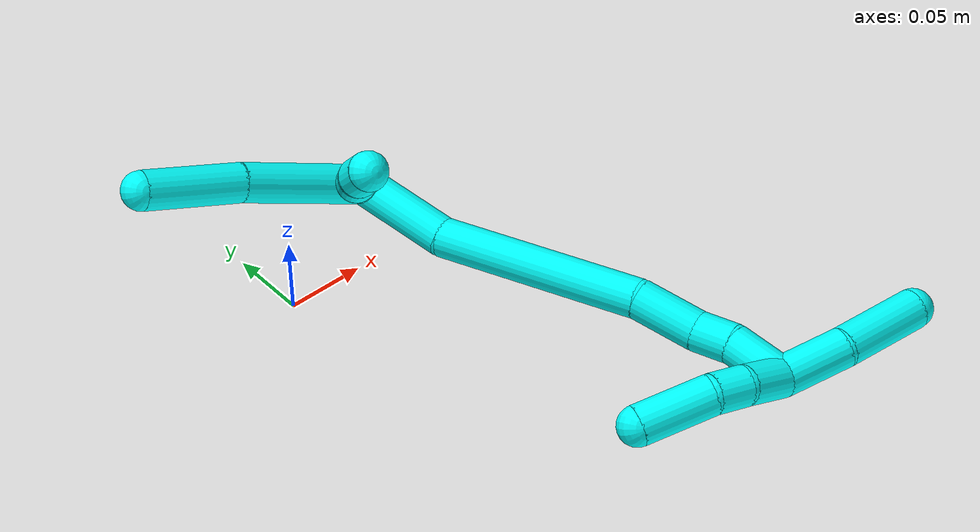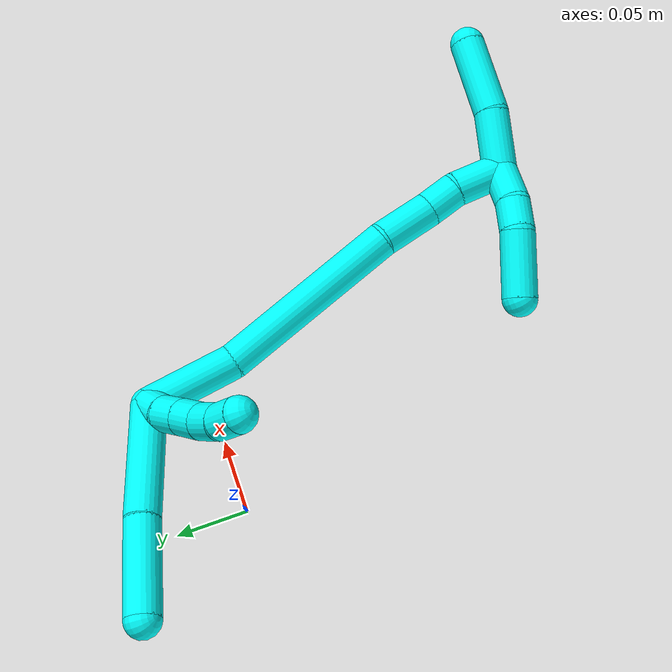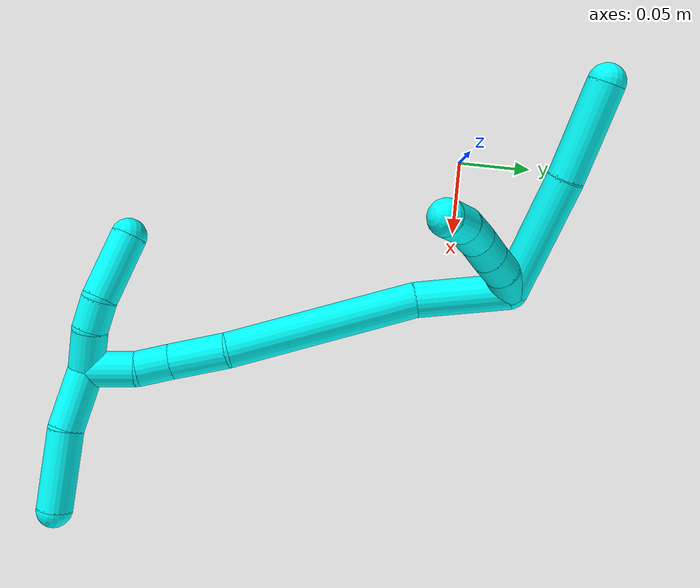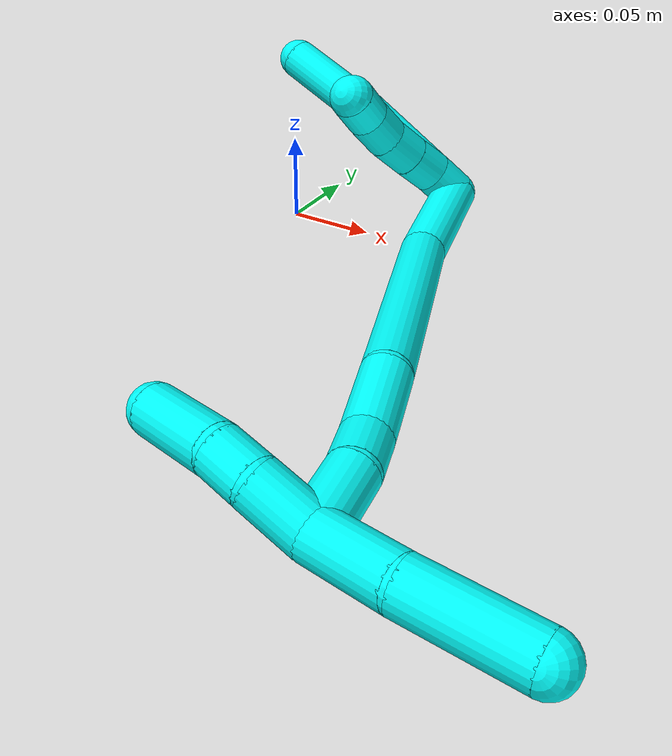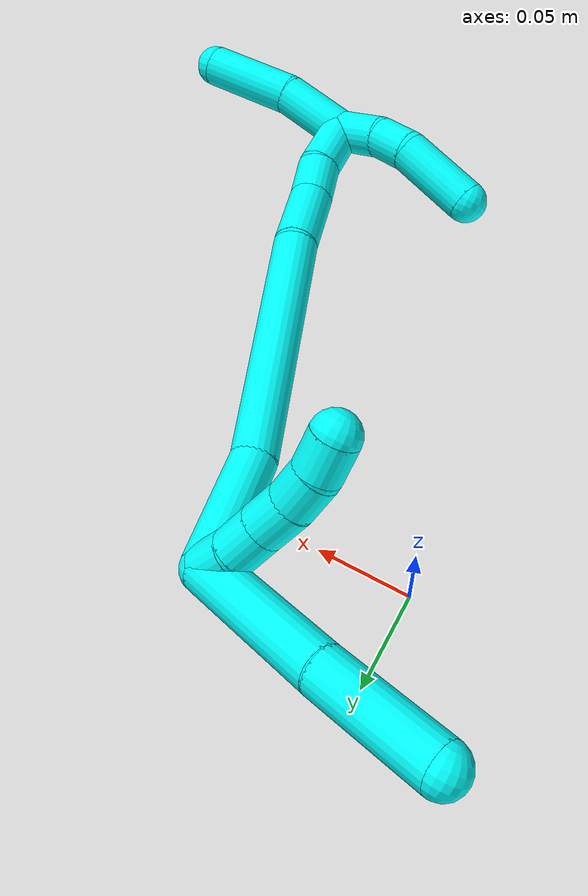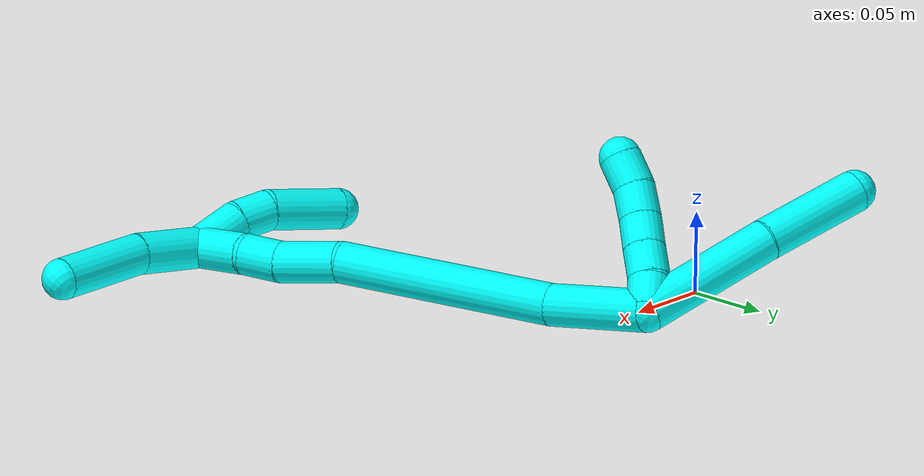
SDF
<sdf version="1.7">
 <world name="default">
  <model name="3">
   <static>0</static>
   <link name="3">
    <collision name="collision-cylinder-e_1_2_8">
     <pose>-0.030871 0.028783 0.000949 -1.53784 -0.820105 0.796277</pose>
     <geometry><cylinder><radius>0.0125</radius><length>0.084436</length></cylinder></geometry>
     <surface>
      <friction><ode><mu>1.16</mu><mu2>1.16</mu2><slip1>0</slip1><slip2>0</slip2></ode></friction>
      <contact><ode><kp>1e+06</kp><kd>1</kd><max_vel>0</max_vel><min_depth>0.001</min_depth></ode></contact>
     </surface>
    </collision>
    <visual name="visual-cylinder-e_1_2_8">
     <pose>-0.030871 0.028783 0.000949 -1.53784 -0.820105 0.796277</pose>
     <geometry><cylinder><radius>0.0125</radius><length>0.084436</length></cylinder></geometry>
     <material><ambient>0.003922 1 0.996078 1</ambient></material>
    </visual>
    <collision name="collision-cylinder-e_2_8_6">
     <pose>-0.087527 0.077795 0.002652 -1.5335 -0.905247 0.876239</pose>
     <geometry><cylinder><radius>0.0125</radius><length>0.065564</length></cylinder></geometry>
     <surface>
      <friction><ode><mu>1.16</mu><mu2>1.16</mu2><slip1>0</slip1><slip2>0</slip2></ode></friction>
      <contact><ode><kp>1e+06</kp><kd>1</kd><max_vel>0</max_vel><min_depth>0.001</min_depth></ode></contact>
     </surface>
    </collision>
    <visual name="visual-cylinder-e_2_8_6">
     <pose>-0.087527 0.077795 0.002652 -1.5335 -0.905247 0.876239</pose>
     <geometry><cylinder><radius>0.0125</radius><length>0.065564</length></cylinder></geometry>
     <material><ambient>0.003922 1 0.996078 1</ambient></material>
    </visual>
    <collision name="collision-cylinder-e_1_2_9">
     <pose>-0.003939 0.004846 0.007811 -0.555281 -0.404821 0.116843</pose>
     <geometry><cylinder><radius>0.0125</radius><length>0.02</length></cylinder></geometry>
     <surface>
      <friction><ode><mu>1.16</mu><mu2>1.16</mu2><slip1>0</slip1><slip2>0</slip2></ode></friction>
      <contact><ode><kp>1e+06</kp><kd>1</kd><max_vel>0</max_vel><min_depth>0.001</min_depth></ode></contact>
     </surface>
    </collision>
    <visual name="visual-cylinder-e_1_2_9">
     <pose>-0.003939 0.004846 0.007811 -0.555281 -0.404821 0.116843</pose>
     <geometry><cylinder><radius>0.0125</radius><length>0.02</length></cylinder></geometry>
     <material><ambient>0.003922 1 0.996078 1</ambient></material>
    </visual>
    <collision name="collision-cylinder-e_2_9_10">
     <pose>-0.011026 0.012903 0.024553 -0.345195 -0.320346 0.056314</pose>
     <geometry><cylinder><radius>0.0125</radius><length>0.02</length></cylinder></geometry>
     <surface>
      <friction><ode><mu>1.16</mu><mu2>1.16</mu2><slip1>0</slip1><slip2>0</slip2></ode></friction>
      <contact><ode><kp>1e+06</kp><kd>1</kd><max_vel>0</max_vel><min_depth>0.001</min_depth></ode></contact>
     </surface>
    </collision>
    <visual name="visual-cylinder-e_2_9_10">
     <pose>-0.011026 0.012903 0.024553 -0.345195 -0.320346 0.056314</pose>
     <geometry><cylinder><radius>0.0125</radius><length>0.02</length></cylinder></geometry>
     <material><ambient>0.003922 1 0.996078 1</ambient></material>
    </visual>
    <collision name="collision-cylinder-e_3_10_11">
     <pose>-0.017323 0.019639 0.042297 -0.380428 -0.320264 0.062177</pose>
     <geometry><cylinder><radius>0.0125</radius><length>0.02</length></cylinder></geometry>
     <surface>
      <friction><ode><mu>1.16</mu><mu2>1.16</mu2><slip1>0</slip1><slip2>0</slip2></ode></friction>
      <contact><ode><kp>1e+06</kp><kd>1</kd><max_vel>0</max_vel><min_depth>0.001</min_depth></ode></contact>
     </surface>
    </collision>
    <visual name="visual-cylinder-e_3_10_11">
     <pose>-0.017323 0.019639 0.042297 -0.380428 -0.320264 0.062177</pose>
     <geometry><cylinder><radius>0.0125</radius><length>0.02</length></cylinder></geometry>
     <material><ambient>0.003922 1 0.996078 1</ambient></material>
    </visual>
    <collision name="collision-cylinder-e_4_11_12">
     <pose>-0.022132 0.027125 0.06014 -0.413411 -0.16687 0.035071</pose>
     <geometry><cylinder><radius>0.0125</radius><length>0.02</length></cylinder></geometry>
     <surface>
      <friction><ode><mu>1.16</mu><mu2>1.16</mu2><slip1>0</slip1><slip2>0</slip2></ode></friction>
      <contact><ode><kp>1e+06</kp><kd>1</kd><max_vel>0</max_vel><min_depth>0.001</min_depth></ode></contact>
     </surface>
    </collision>
    <visual name="visual-cylinder-e_4_11_12">
     <pose>-0.022132 0.027125 0.06014 -0.413411 -0.16687 0.035071</pose>
     <geometry><cylinder><radius>0.0125</radius><length>0.02</length></cylinder></geometry>
     <material><ambient>0.003922 1 0.996078 1</ambient></material>
    </visual>
    <collision name="collision-cylinder-e_5_12_5">
     <pose>-0.023488 0.03387 0.078771 -0.282159 0.030495 -0.004331</pose>
     <geometry><cylinder><radius>0.0125</radius><length>0.02</length></cylinder></geometry>
     <surface>
      <friction><ode><mu>1.16</mu><mu2>1.16</mu2><slip1>0</slip1><slip2>0</slip2></ode></friction>
      <contact><ode><kp>1e+06</kp><kd>1</kd><max_vel>0</max_vel><min_depth>0.001</min_depth></ode></contact>
     </surface>
    </collision>
    <visual name="visual-cylinder-e_5_12_5">
     <pose>-0.023488 0.03387 0.078771 -0.282159 0.030495 -0.004331</pose>
     <geometry><cylinder><radius>0.0125</radius><length>0.02</length></cylinder></geometry>
     <material><ambient>0.003922 1 0.996078 1</ambient></material>
    </visual>
    <collision name="collision-cylinder-e_1_2_13">
     <pose>0.001515 -0.021921 0.023741 0.745558 0.046851 0.018325</pose>
     <geometry><cylinder><radius>0.0125</radius><length>0.064699</length></cylinder></geometry>
     <surface>
      <friction><ode><mu>1.16</mu><mu2>1.16</mu2><slip1>0</slip1><slip2>0</slip2></ode></friction>
      <contact><ode><kp>1e+06</kp><kd>1</kd><max_vel>0</max_vel><min_depth>0.001</min_depth></ode></contact>
     </surface>
    </collision>
    <visual name="visual-cylinder-e_1_2_13">
     <pose>0.001515 -0.021921 0.023741 0.745558 0.046851 0.018325</pose>
     <geometry><cylinder><radius>0.0125</radius><length>0.064699</length></cylinder></geometry>
     <material><ambient>0.003922 1 0.996078 1</ambient></material>
    </visual>
    <collision name="collision-cylinder-e_2_13_14">
     <pose>0.02054 -0.080842 0.100724 0.607324 0.263767 0.083087</pose>
     <geometry><cylinder><radius>0.0125</radius><length>0.134317</length></cylinder></geometry>
     <surface>
      <friction><ode><mu>1.16</mu><mu2>1.16</mu2><slip1>0</slip1><slip2>0</slip2></ode></friction>
      <contact><ode><kp>1e+06</kp><kd>1</kd><max_vel>0</max_vel><min_depth>0.001</min_depth></ode></contact>
     </surface>
    </collision>
    <visual name="visual-cylinder-e_2_13_14">
     <pose>0.02054 -0.080842 0.100724 0.607324 0.263767 0.083087</pose>
     <geometry><cylinder><radius>0.0125</radius><length>0.134317</length></cylinder></geometry>
     <material><ambient>0.003922 1 0.996078 1</ambient></material>
    </visual>
    <collision name="collision-cylinder-e_3_14_15">
     <pose>0.041009 -0.13222 0.168046 0.795854 0.146033 0.061475</pose>
     <geometry><cylinder><radius>0.0125</radius><length>0.04068</length></cylinder></geometry>
     <surface>
      <friction><ode><mu>1.16</mu><mu2>1.16</mu2><slip1>0</slip1><slip2>0</slip2></ode></friction>
      <contact><ode><kp>1e+06</kp><kd>1</kd><max_vel>0</max_vel><min_depth>0.001</min_depth></ode></contact>
     </surface>
    </collision>
    <visual name="visual-cylinder-e_3_14_15">
     <pose>0.041009 -0.13222 0.168046 0.795854 0.146033 0.061475</pose>
     <geometry><cylinder><radius>0.0125</radius><length>0.04068</length></cylinder></geometry>
     <material><ambient>0.003922 1 0.996078 1</ambient></material>
    </visual>
    <collision name="collision-cylinder-e_4_15_16">
     <pose>0.046573 -0.153251 0.191938 0.595881 0.216251 0.066642</pose>
     <geometry><cylinder><radius>0.0125</radius><length>0.024277</length></cylinder></geometry>
     <surface>
      <friction><ode><mu>1.16</mu><mu2>1.16</mu2><slip1>0</slip1><slip2>0</slip2></ode></friction>
      <contact><ode><kp>1e+06</kp><kd>1</kd><max_vel>0</max_vel><min_depth>0.001</min_depth></ode></contact>
     </surface>
    </collision>
    <visual name="visual-cylinder-e_4_15_16">
     <pose>0.046573 -0.153251 0.191938 0.595881 0.216251 0.066642</pose>
     <geometry><cylinder><radius>0.0125</radius><length>0.024277</length></cylinder></geometry>
     <material><ambient>0.003922 1 0.996078 1</ambient></material>
    </visual>
    <collision name="collision-cylinder-e_5_16_1">
     <pose>0.048865 -0.1712 0.215779 0.677889 -0.017341 -0.006114</pose>
     <geometry><cylinder><radius>0.0125</radius><length>0.036028</length></cylinder></geometry>
     <surface>
      <friction><ode><mu>1.16</mu><mu2>1.16</mu2><slip1>0</slip1><slip2>0</slip2></ode></friction>
      <contact><ode><kp>1e+06</kp><kd>1</kd><max_vel>0</max_vel><min_depth>0.001</min_depth></ode></contact>
     </surface>
    </collision>
    <visual name="visual-cylinder-e_5_16_1">
     <pose>0.048865 -0.1712 0.215779 0.677889 -0.017341 -0.006114</pose>
     <geometry><cylinder><radius>0.0125</radius><length>0.036028</length></cylinder></geometry>
     <material><ambient>0.003922 1 0.996078 1</ambient></material>
    </visual>
    <collision name="collision-cylinder-e_1_1_17">
     <pose>0.068762 -0.189341 0.23318 1.11312 1.20979 0.812422</pose>
     <geometry><cylinder><radius>0.0125</radius><length>0.043202</length></cylinder></geometry>
     <surface>
      <friction><ode><mu>1.16</mu><mu2>1.16</mu2><slip1>0</slip1><slip2>0</slip2></ode></friction>
      <contact><ode><kp>1e+06</kp><kd>1</kd><max_vel>0</max_vel><min_depth>0.001</min_depth></ode></contact>
     </surface>
    </collision>
    <visual name="visual-cylinder-e_1_1_17">
     <pose>0.068762 -0.189341 0.23318 1.11312 1.20979 0.812422</pose>
     <geometry><cylinder><radius>0.0125</radius><length>0.043202</length></cylinder></geometry>
     <material><ambient>0.003922 1 0.996078 1</ambient></material>
    </visual>
    <collision name="collision-cylinder-e_2_17_4">
     <pose>0.115608 -0.205942 0.235225 1.7059 1.21672 1.3465</pose>
     <geometry><cylinder><radius>0.0125</radius><length>0.056798</length></cylinder></geometry>
     <surface>
      <friction><ode><mu>1.16</mu><mu2>1.16</mu2><slip1>0</slip1><slip2>0</slip2></ode></friction>
      <contact><ode><kp>1e+06</kp><kd>1</kd><max_vel>0</max_vel><min_depth>0.001</min_depth></ode></contact>
     </surface>
    </collision>
    <visual name="visual-cylinder-e_2_17_4">
     <pose>0.115608 -0.205942 0.235225 1.7059 1.21672 1.3465</pose>
     <geometry><cylinder><radius>0.0125</radius><length>0.056798</length></cylinder></geometry>
     <material><ambient>0.003922 1 0.996078 1</ambient></material>
    </visual>
    <collision name="collision-cylinder-e_1_1_18">
     <pose>0.036482 -0.173724 0.232587 -1.264 -0.919447 0.695544</pose>
     <geometry><cylinder><radius>0.0125</radius><length>0.030356</length></cylinder></geometry>
     <surface>
      <friction><ode><mu>1.16</mu><mu2>1.16</mu2><slip1>0</slip1><slip2>0</slip2></ode></friction>
      <contact><ode><kp>1e+06</kp><kd>1</kd><max_vel>0</max_vel><min_depth>0.001</min_depth></ode></contact>
     </surface>
    </collision>
    <visual name="visual-cylinder-e_1_1_18">
     <pose>0.036482 -0.173724 0.232587 -1.264 -0.919447 0.695544</pose>
     <geometry><cylinder><radius>0.0125</radius><length>0.030356</length></cylinder></geometry>
     <material><ambient>0.003922 1 0.996078 1</ambient></material>
    </visual>
    <collision name="collision-cylinder-e_2_18_19">
     <pose>0.014878 -0.159298 0.234826 -1.66613 -1.03354 1.1175</pose>
     <geometry><cylinder><radius>0.0125</radius><length>0.022194</length></cylinder></geometry>
     <surface>
      <friction><ode><mu>1.16</mu><mu2>1.16</mu2><slip1>0</slip1><slip2>0</slip2></ode></friction>
      <contact><ode><kp>1e+06</kp><kd>1</kd><max_vel>0</max_vel><min_depth>0.001</min_depth></ode></contact>
     </surface>
    </collision>
    <visual name="visual-cylinder-e_2_18_19">
     <pose>0.014878 -0.159298 0.234826 -1.66613 -1.03354 1.1175</pose>
     <geometry><cylinder><radius>0.0125</radius><length>0.022194</length></cylinder></geometry>
     <material><ambient>0.003922 1 0.996078 1</ambient></material>
    </visual>
    <collision name="collision-cylinder-e_3_19_3">
     <pose>-0.016245 -0.146072 0.228009 -2.26278 -1.14332 1.87955</pose>
     <geometry><cylinder><radius>0.0125</radius><length>0.04745</length></cylinder></geometry>
     <surface>
      <friction><ode><mu>1.16</mu><mu2>1.16</mu2><slip1>0</slip1><slip2>0</slip2></ode></friction>
      <contact><ode><kp>1e+06</kp><kd>1</kd><max_vel>0</max_vel><min_depth>0.001</min_depth></ode></contact>
     </surface>
    </collision>
    <visual name="visual-cylinder-e_3_19_3">
     <pose>-0.016245 -0.146072 0.228009 -2.26278 -1.14332 1.87955</pose>
     <geometry><cylinder><radius>0.0125</radius><length>0.04745</length></cylinder></geometry>
     <material><ambient>0.003922 1 0.996078 1</ambient></material>
    </visual>
    <collision name="collision-sphere-3">
     <pose>-0.037836 -0.138498 0.221733 0 -0 0</pose>
     <geometry><sphere><radius>0.0125</radius></sphere></geometry>
     <surface>
      <friction><ode><mu>1.16</mu><mu2>1.16</mu2><slip1>0</slip1><slip2>0</slip2></ode></friction>
      <contact><ode><kp>1e+06</kp><kd>1</kd><max_vel>0</max_vel><min_depth>0.001</min_depth></ode></contact>
     </surface>
    </collision>
    <visual name="visual-sphere-3">
     <pose>-0.037836 -0.138498 0.221733 0 -0 0</pose>
     <geometry><sphere><radius>0.0125</radius></sphere></geometry>
     <material><ambient>0.003922 1 0.996078 1</ambient></material>
    </visual>
    <collision name="collision-sphere-19">
     <pose>0.005345 -0.153645 0.234285 0 -0 0</pose>
     <geometry><sphere><radius>0.0125</radius></sphere></geometry>
     <surface>
      <friction><ode><mu>1.16</mu><mu2>1.16</mu2><slip1>0</slip1><slip2>0</slip2></ode></friction>
      <contact><ode><kp>1e+06</kp><kd>1</kd><max_vel>0</max_vel><min_depth>0.001</min_depth></ode></contact>
     </surface>
    </collision>
    <visual name="visual-sphere-19">
     <pose>0.005345 -0.153645 0.234285 0 -0 0</pose>
     <geometry><sphere><radius>0.0125</radius></sphere></geometry>
     <material><ambient>0.003922 1 0.996078 1</ambient></material>
    </visual>
    <collision name="collision-sphere-11">
     <pose>-0.020471 0.023163 0.05111 0 -0 0</pose>
     <geometry><sphere><radius>0.0125</radius></sphere></geometry>
     <surface>
      <friction><ode><mu>1.16</mu><mu2>1.16</mu2><slip1>0</slip1><slip2>0</slip2></ode></friction>
      <contact><ode><kp>1e+06</kp><kd>1</kd><max_vel>0</max_vel><min_depth>0.001</min_depth></ode></contact>
     </surface>
    </collision>
    <visual name="visual-sphere-11">
     <pose>-0.020471 0.023163 0.05111 0 -0 0</pose>
     <geometry><sphere><radius>0.0125</radius></sphere></geometry>
     <material><ambient>0.003922 1 0.996078 1</ambient></material>
    </visual>
    <collision name="collision-sphere-10">
     <pose>-0.014175 0.016115 0.033484 0 -0 0</pose>
     <geometry><sphere><radius>0.0125</radius></sphere></geometry>
     <surface>
      <friction><ode><mu>1.16</mu><mu2>1.16</mu2><slip1>0</slip1><slip2>0</slip2></ode></friction>
      <contact><ode><kp>1e+06</kp><kd>1</kd><max_vel>0</max_vel><min_depth>0.001</min_depth></ode></contact>
     </surface>
    </collision>
    <visual name="visual-sphere-10">
     <pose>-0.014175 0.016115 0.033484 0 -0 0</pose>
     <geometry><sphere><radius>0.0125</radius></sphere></geometry>
     <material><ambient>0.003922 1 0.996078 1</ambient></material>
    </visual>
    <collision name="collision-sphere-6">
     <pose>-0.113312 0.098023 0.003407 0 -0 0</pose>
     <geometry><sphere><radius>0.0125</radius></sphere></geometry>
     <surface>
      <friction><ode><mu>1.16</mu><mu2>1.16</mu2><slip1>0</slip1><slip2>0</slip2></ode></friction>
      <contact><ode><kp>1e+06</kp><kd>1</kd><max_vel>0</max_vel><min_depth>0.001</min_depth></ode></contact>
     </surface>
    </collision>
    <visual name="visual-sphere-6">
     <pose>-0.113312 0.098023 0.003407 0 -0 0</pose>
     <geometry><sphere><radius>0.0125</radius></sphere></geometry>
     <material><ambient>0.003922 1 0.996078 1</ambient></material>
    </visual>
    <collision name="collision-sphere-9">
     <pose>-0.007877 0.009691 0.015621 0 -0 0</pose>
     <geometry><sphere><radius>0.0125</radius></sphere></geometry>
     <surface>
      <friction><ode><mu>1.16</mu><mu2>1.16</mu2><slip1>0</slip1><slip2>0</slip2></ode></friction>
      <contact><ode><kp>1e+06</kp><kd>1</kd><max_vel>0</max_vel><min_depth>0.001</min_depth></ode></contact>
     </surface>
    </collision>
    <visual name="visual-sphere-9">
     <pose>-0.007877 0.009691 0.015621 0 -0 0</pose>
     <geometry><sphere><radius>0.0125</radius></sphere></geometry>
     <material><ambient>0.003922 1 0.996078 1</ambient></material>
    </visual>
    <collision name="collision-sphere-2">
     <geometry><sphere><radius>0.0125</radius></sphere></geometry>
     <surface>
      <friction><ode><mu>1.16</mu><mu2>1.16</mu2><slip1>0</slip1><slip2>0</slip2></ode></friction>
      <contact><ode><kp>1e+06</kp><kd>1</kd><max_vel>0</max_vel><min_depth>0.001</min_depth></ode></contact>
     </surface>
    </collision>
    <visual name="visual-sphere-2">
     <geometry><sphere><radius>0.0125</radius></sphere></geometry>
     <material><ambient>0.003922 1 0.996078 1</ambient></material>
    </visual>
    <collision name="collision-sphere-8">
     <pose>-0.061741 0.057566 0.001898 0 -0 0</pose>
     <geometry><sphere><radius>0.0125</radius></sphere></geometry>
     <surface>
      <friction><ode><mu>1.16</mu><mu2>1.16</mu2><slip1>0</slip1><slip2>0</slip2></ode></friction>
      <contact><ode><kp>1e+06</kp><kd>1</kd><max_vel>0</max_vel><min_depth>0.001</min_depth></ode></contact>
     </surface>
    </collision>
    <visual name="visual-sphere-8">
     <pose>-0.061741 0.057566 0.001898 0 -0 0</pose>
     <geometry><sphere><radius>0.0125</radius></sphere></geometry>
     <material><ambient>0.003922 1 0.996078 1</ambient></material>
    </visual>
    <collision name="collision-sphere-12">
     <pose>-0.023793 0.031087 0.069171 0 -0 0</pose>
     <geometry><sphere><radius>0.0125</radius></sphere></geometry>
     <surface>
      <friction><ode><mu>1.16</mu><mu2>1.16</mu2><slip1>0</slip1><slip2>0</slip2></ode></friction>
      <contact><ode><kp>1e+06</kp><kd>1</kd><max_vel>0</max_vel><min_depth>0.001</min_depth></ode></contact>
     </surface>
    </collision>
    <visual name="visual-sphere-12">
     <pose>-0.023793 0.031087 0.069171 0 -0 0</pose>
     <geometry><sphere><radius>0.0125</radius></sphere></geometry>
     <material><ambient>0.003922 1 0.996078 1</ambient></material>
    </visual>
    <collision name="collision-sphere-5">
     <pose>-0.023183 0.036653 0.088371 0 -0 0</pose>
     <geometry><sphere><radius>0.0125</radius></sphere></geometry>
     <surface>
      <friction><ode><mu>1.16</mu><mu2>1.16</mu2><slip1>0</slip1><slip2>0</slip2></ode></friction>
      <contact><ode><kp>1e+06</kp><kd>1</kd><max_vel>0</max_vel><min_depth>0.001</min_depth></ode></contact>
     </surface>
    </collision>
    <visual name="visual-sphere-5">
     <pose>-0.023183 0.036653 0.088371 0 -0 0</pose>
     <geometry><sphere><radius>0.0125</radius></sphere></geometry>
     <material><ambient>0.003922 1 0.996078 1</ambient></material>
    </visual>
    <collision name="collision-sphere-13">
     <pose>0.00303 -0.043842 0.047482 0 -0 0</pose>
     <geometry><sphere><radius>0.0125</radius></sphere></geometry>
     <surface>
      <friction><ode><mu>1.16</mu><mu2>1.16</mu2><slip1>0</slip1><slip2>0</slip2></ode></friction>
      <contact><ode><kp>1e+06</kp><kd>1</kd><max_vel>0</max_vel><min_depth>0.001</min_depth></ode></contact>
     </surface>
    </collision>
    <visual name="visual-sphere-13">
     <pose>0.00303 -0.043842 0.047482 0 -0 0</pose>
     <geometry><sphere><radius>0.0125</radius></sphere></geometry>
     <material><ambient>0.003922 1 0.996078 1</ambient></material>
    </visual>
    <collision name="collision-sphere-14">
     <pose>0.038049 -0.117842 0.153966 0 -0 0</pose>
     <geometry><sphere><radius>0.0125</radius></sphere></geometry>
     <surface>
      <friction><ode><mu>1.16</mu><mu2>1.16</mu2><slip1>0</slip1><slip2>0</slip2></ode></friction>
      <contact><ode><kp>1e+06</kp><kd>1</kd><max_vel>0</max_vel><min_depth>0.001</min_depth></ode></contact>
     </surface>
    </collision>
    <visual name="visual-sphere-14">
     <pose>0.038049 -0.117842 0.153966 0 -0 0</pose>
     <geometry><sphere><radius>0.0125</radius></sphere></geometry>
     <material><ambient>0.003922 1 0.996078 1</ambient></material>
    </visual>
    <collision name="collision-sphere-15">
     <pose>0.043969 -0.146597 0.182126 0 -0 0</pose>
     <geometry><sphere><radius>0.0125</radius></sphere></geometry>
     <surface>
      <friction><ode><mu>1.16</mu><mu2>1.16</mu2><slip1>0</slip1><slip2>0</slip2></ode></friction>
      <contact><ode><kp>1e+06</kp><kd>1</kd><max_vel>0</max_vel><min_depth>0.001</min_depth></ode></contact>
     </surface>
    </collision>
    <visual name="visual-sphere-15">
     <pose>0.043969 -0.146597 0.182126 0 -0 0</pose>
     <geometry><sphere><radius>0.0125</radius></sphere></geometry>
     <material><ambient>0.003922 1 0.996078 1</ambient></material>
    </visual>
    <collision name="collision-sphere-16">
     <pose>0.049178 -0.159905 0.201751 0 -0 0</pose>
     <geometry><sphere><radius>0.0125</radius></sphere></geometry>
     <surface>
      <friction><ode><mu>1.16</mu><mu2>1.16</mu2><slip1>0</slip1><slip2>0</slip2></ode></friction>
      <contact><ode><kp>1e+06</kp><kd>1</kd><max_vel>0</max_vel><min_depth>0.001</min_depth></ode></contact>
     </surface>
    </collision>
    <visual name="visual-sphere-16">
     <pose>0.049178 -0.159905 0.201751 0 -0 0</pose>
     <geometry><sphere><radius>0.0125</radius></sphere></geometry>
     <material><ambient>0.003922 1 0.996078 1</ambient></material>
    </visual>
    <collision name="collision-sphere-1">
     <pose>0.048553 -0.182496 0.229808 0 -0 0</pose>
     <geometry><sphere><radius>0.0125</radius></sphere></geometry>
     <surface>
      <friction><ode><mu>1.16</mu><mu2>1.16</mu2><slip1>0</slip1><slip2>0</slip2></ode></friction>
      <contact><ode><kp>1e+06</kp><kd>1</kd><max_vel>0</max_vel><min_depth>0.001</min_depth></ode></contact>
     </surface>
    </collision>
    <visual name="visual-sphere-1">
     <pose>0.048553 -0.182496 0.229808 0 -0 0</pose>
     <geometry><sphere><radius>0.0125</radius></sphere></geometry>
     <material><ambient>0.003922 1 0.996078 1</ambient></material>
    </visual>
    <collision name="collision-sphere-18">
     <pose>0.024412 -0.164952 0.235366 0 -0 0</pose>
     <geometry><sphere><radius>0.0125</radius></sphere></geometry>
     <surface>
      <friction><ode><mu>1.16</mu><mu2>1.16</mu2><slip1>0</slip1><slip2>0</slip2></ode></friction>
      <contact><ode><kp>1e+06</kp><kd>1</kd><max_vel>0</max_vel><min_depth>0.001</min_depth></ode></contact>
     </surface>
    </collision>
    <visual name="visual-sphere-18">
     <pose>0.024412 -0.164952 0.235366 0 -0 0</pose>
     <geometry><sphere><radius>0.0125</radius></sphere></geometry>
     <material><ambient>0.003922 1 0.996078 1</ambient></material>
    </visual>
    <collision name="collision-sphere-17">
     <pose>0.08897 -0.196185 0.236551 0 -0 0</pose>
     <geometry><sphere><radius>0.0125</radius></sphere></geometry>
     <surface>
      <friction><ode><mu>1.16</mu><mu2>1.16</mu2><slip1>0</slip1><slip2>0</slip2></ode></friction>
      <contact><ode><kp>1e+06</kp><kd>1</kd><max_vel>0</max_vel><min_depth>0.001</min_depth></ode></contact>
     </surface>
    </collision>
    <visual name="visual-sphere-17">
     <pose>0.08897 -0.196185 0.236551 0 -0 0</pose>
     <geometry><sphere><radius>0.0125</radius></sphere></geometry>
     <material><ambient>0.003922 1 0.996078 1</ambient></material>
    </visual>
    <collision name="collision-sphere-4">
     <pose>0.142245 -0.215699 0.233898 0 -0 0</pose>
     <geometry><sphere><radius>0.0125</radius></sphere></geometry>
     <surface>
      <friction><ode><mu>1.16</mu><mu2>1.16</mu2><slip1>0</slip1><slip2>0</slip2></ode></friction>
      <contact><ode><kp>1e+06</kp><kd>1</kd><max_vel>0</max_vel><min_depth>0.001</min_depth></ode></contact>
     </surface>
    </collision>
    <visual name="visual-sphere-4">
     <pose>0.142245 -0.215699 0.233898 0 -0 0</pose>
     <geometry><sphere><radius>0.0125</radius></sphere></geometry>
     <material><ambient>0.003922 1 0.996078 1</ambient></material>
    </visual>
    <inertial>
     <pose>0.010289 -0.07155 0.113847 0 -0 0</pose>
     <mass>0.75</mass>
     <inertia>
      <ixx>0.00035</ixx>
      <ixy>0</ixy>
      <ixz>0</ixz>
      <iyy>0.000358</iyy>
      <iyz>0</iyz>
      <izz>0.000107</izz>
     </inertia>
    </inertial>
   </link>
   <pose>0.087635 0.040232 0.019839 0.972938 -0.27239 0.102222</pose>
  </model>
 </world>
</sdf>
